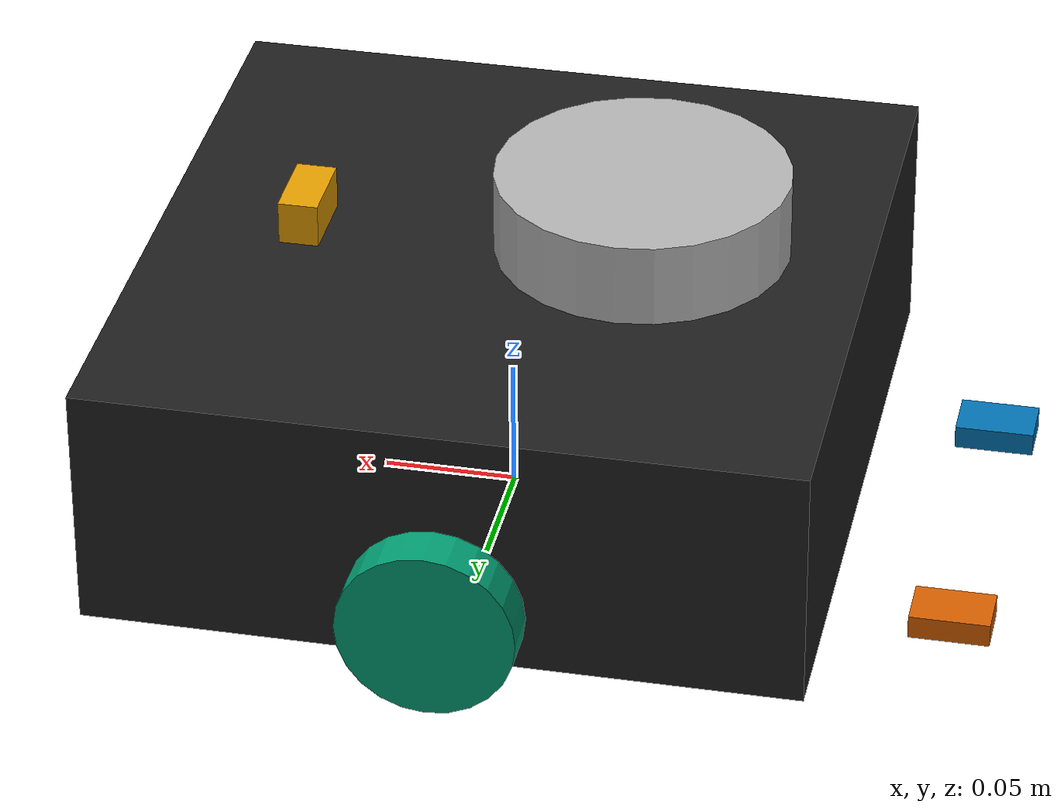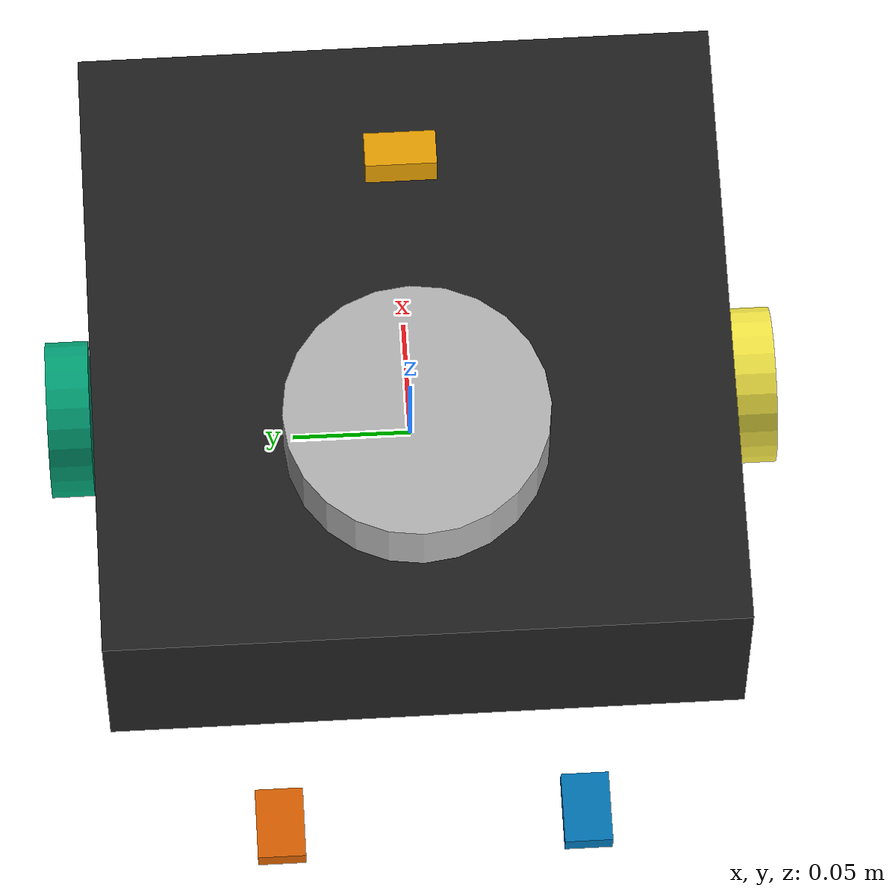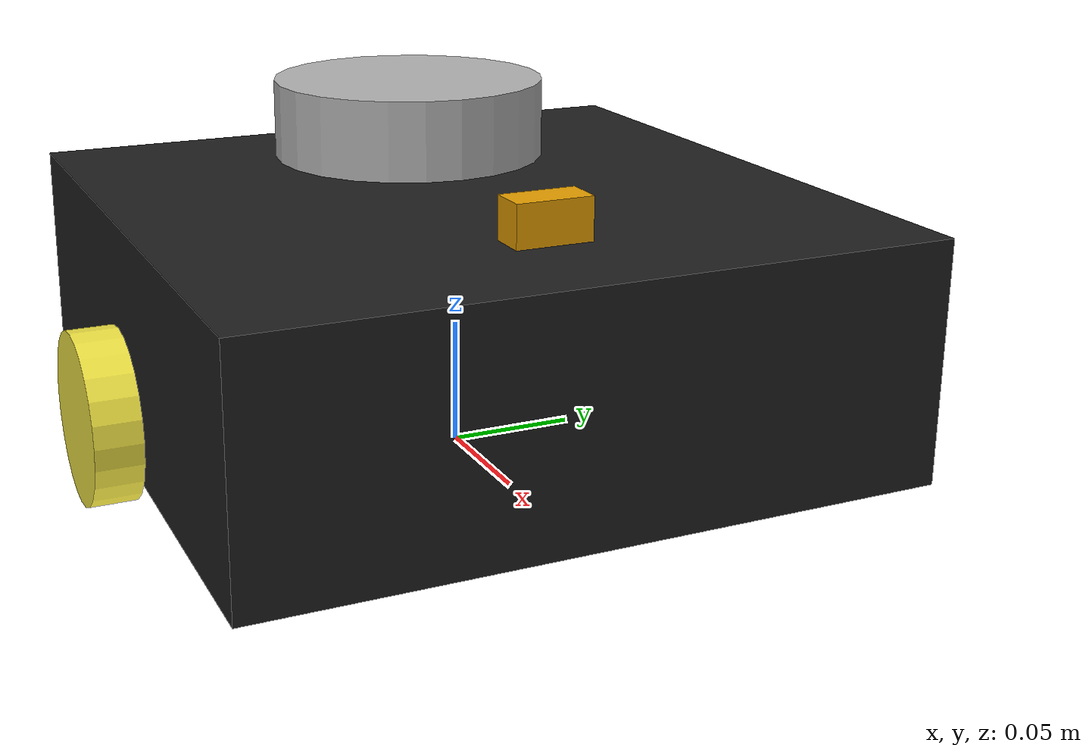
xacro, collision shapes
<?xml version="1.0" ?>
<robot name="turtlebot3_waffle_pi" xmlns:xacro="http://ros.org/wiki/xacro">
  <xacro:include filename="$(find turtlebot3_description)/urdf/common_properties.xacro"/>
  <xacro:include filename="$(find turtlebot3_description)/urdf/turtlebot3_waffle_pi.gazebo.xacro"/>

  <link name="base_footprint"/>

  <joint name="base_joint" type="fixed">
    <parent link="base_footprint"/>
    <child link="base_link" />
    <origin xyz="0 0 0.010" rpy="0 0 0"/>
  </joint>

  <link name="base_link">
    <visual>
      <origin xyz="0.0 0 0.0" rpy="0 0 0"/>
      <geometry>
       <mesh filename="package://robot_description/models/laser_robot/meshes/carcaca.dae" scale="0.9 0.9 0.9"/>
      </geometry>
      <material name="light_black"/>
    </visual>

    <collision>
      <origin xyz="0.0 0 0.047" rpy="0 0 0"/>
      <geometry>
        <box size="0.266 0.266 0.094"/>
      </geometry>
    </collision>

    <inertial>
      <origin xyz="0 0 0" rpy="0 0 0"/>
      <mass value="16"/>
      <inertia ixx="1" ixy="0" ixz="0"
               iyy="1" iyz="0"
               izz="1" />
    </inertial>
  </link>

  <joint name="wheel_left_joint" type="continuous">
    <parent link="base_link"/>
    <child link="wheel_left_link"/>
    <origin xyz="0.0 0.144 0.023" rpy="-1.57 0 0"/>
    <axis xyz="0 0 1"/>
    <limit effort="-1.0" lower="-1e+16" upper="1e+16" velocity="-1.0"/>
  </joint>

  <gazebo reference="wheel_left_link">
    <selfCollide>false</selfCollide>
    <mu1 value="100"/>
    <mu2 value="50"/>
    <kp value="10000000.0" />
    <kd value="1000" />
    <fdir1 value="0 0 0"/>
  </gazebo>

  <link name="wheel_left_link">
    <visual>
      <origin xyz="0 0 0" rpy="1.57 0 0"/>
      <geometry>
        <mesh filename="package://turtlebot3_description/meshes/wheels/left_tire.stl" scale="0.001 0.001 0.001"/>
      </geometry>
      <material name="dark"/>
    </visual>

    <collision>
      <origin xyz="0 0 0" rpy="0 0 0"/>
      <geometry>
        <cylinder length="0.018" radius="0.033"/>
      </geometry>
    </collision>

    <inertial>
      <origin xyz="0 0 0" />
      <mass value="2.8498940e-02" />
      <inertia ixx="1.1175580e-05" ixy="-4.2369783e-11" ixz="-5.9381719e-09"
               iyy="1.1192413e-05" iyz="-1.4400107e-11"
               izz="2.0712558e-05" />
      </inertial>
  </link>

  <gazebo reference="right_wheel">
    <selfCollide>false</selfCollide>
    <mu1 value="100"/>
    <mu2 value="50"/>
    <kp value="10000000.0" />
    <kd value="1000" />
    <fdir1 value="0 0 0"/>
  </gazebo>

  <joint name="wheel_right_joint" type="continuous">
    <parent link="base_link"/>
    <child link="wheel_right_link"/>
    <origin xyz="0.0 -0.144 0.023" rpy="-1.57 0 0"/>
    <axis xyz="0 0 1"/>
    <limit effort="-1.0" lower="-1e+16" upper="1e+16" velocity="-1.0"/>
  </joint>

  <link name="wheel_right_link">
    <visual>
      <origin xyz="0 0 0" rpy="1.57 0 0"/>
      <geometry>
        <mesh filename="package://turtlebot3_description/meshes/wheels/right_tire.stl" scale="0.001 0.001 0.001"/>
      </geometry>
      <material name="dark"/>
    </visual>

    <collision>
      <origin xyz="0 0 0" rpy="0 0 0"/>
      <geometry>
        <cylinder length="0.018" radius="0.033"/>
      </geometry>
    </collision>

    <inertial>
      <origin xyz="0 0 0" />
      <mass value="2.8498940e-02" />
      <inertia ixx="1.1175580e-05" ixy="-4.2369783e-11" ixz="-5.9381719e-09"
               iyy="1.1192413e-05" iyz="-1.4400107e-11"
               izz="2.0712558e-05" />
      </inertial>
  </link>

  <joint name="caster_back_right_joint" type="fixed">
    <parent link="base_link"/>
    <child link="caster_back_right_link"/>
    <origin xyz="-0.177 -0.064 -0.004" rpy="-1.57 0 0"/>
  </joint>

  <link name="caster_back_right_link">
    <collision>
      <origin xyz="0 0.001 0" rpy="0 0 0"/>
      <geometry>
        <box size="0.030 0.009 0.020"/>
      </geometry>
    </collision>

    <inertial>
      <origin xyz="0 0 0" />
      <mass value="0.005" />
      <inertia ixx="0.001" ixy="0.0" ixz="0.0"
               iyy="0.001" iyz="0.0"
               izz="0.001" />
    </inertial>
  </link>

  <joint name="caster_back_left_joint" type="fixed">
    <parent link="base_link"/>
    <child link="caster_back_left_link"/>
    <origin xyz="-0.177 0.064 -0.004" rpy="-1.57 0 0"/>
  </joint>

  <link name="caster_back_left_link">
    <collision>
      <origin xyz="0 0.001 0" rpy="0 0 0"/>
      <geometry>
        <box size="0.030 0.009 0.020"/>
      </geometry>
    </collision>

    <inertial>
      <origin xyz="0 0 0" />
      <mass value="0.005" />
      <inertia ixx="0.001" ixy="0.0" ixz="0.0"
               iyy="0.001" iyz="0.0"
               izz="0.001" />
    </inertial>
  </link>

  <joint name="imu_joint" type="fixed">
    <parent link="base_link"/>
    <child link="imu_link"/>
    <origin xyz="0.0 0 0.068" rpy="0 0 0"/>
  </joint>

  <link name="imu_link"/>

  <joint name="scan_joint" type="fixed">
    <parent link="base_link"/>
    <child link="base_scan"/>
    <origin xyz="-0.064 0 0.122" rpy="0 0 0"/>
  </joint>

  <link name="base_scan">
    <visual>
      <origin xyz="0 0 0.0" rpy="0 0 0"/>
      <geometry>
        <mesh filename="package://turtlebot3_description/meshes/sensors/lds.stl" scale="0.001 0.001 0.001"/>
      </geometry>
      <material name="dark"/>
    </visual>

    <collision>
      <origin xyz="0.015 0 -0.0065" rpy="0 0 0"/>
      <geometry>
        <cylinder length="0.0315" radius="0.055"/>
      </geometry>
    </collision>

    <inertial>
      <mass value="0.114" />
      <origin xyz="0 0 0" />
      <inertia ixx="0.001" ixy="0.0" ixz="0.0"
               iyy="0.001" iyz="0.0"
               izz="0.001" />
    </inertial>
  </link>

  <joint name="camera_joint" type="fixed">
    <origin xyz="0.073 -0.011 0.084" rpy="0 0 0"/>
    <parent link="base_link"/>
    <child link="camera_link"/>
  </joint>

  <link name="camera_link">
    <collision>
      <origin xyz="0.005 0.011 0.013" rpy="0 0 0"/><link name="lidar">
    <inertial>
      <mass value="0.1"/>
      <origin rpy="0 0 0" xyz="0 0 0"/>
      <inertia ixx="1" ixy="0" ixz="0" iyy="1" iyz="0" izz="1"/>
    </inertial>
    <collision name="lidar_collision">
      <origin rpy="0 0 0" xyz="0 0 0"/>
      <geometry>
      </geometry>
    </collision>
    <visual name="lidar_visual">
      <origin rpy="0 0 0" xyz="0 0 0"/>
      <geometry>
      </geometry>
    </visual>
  </link>
      <geometry>
        <box size="0.015 0.030 0.027"/>
      </geometry>
    </collision>
  </link>

  <joint name="camera_rgb_joint" type="fixed">
    <origin xyz="0.003 0.011 0.009" rpy="0 0 0"/>
    <parent link="camera_link"/>
    <child link="camera_rgb_frame"/>
  </joint>
  <link name="camera_rgb_frame"/>

  <joint name="camera_rgb_optical_joint" type="fixed">
    <origin xyz="0 0 0" rpy="-1.57 0 -1.57"/>
    <parent link="camera_rgb_frame"/>
    <child link="camera_rgb_optical_frame"/>
  </joint>
  <link name="camera_rgb_optical_frame"/>

</robot>
